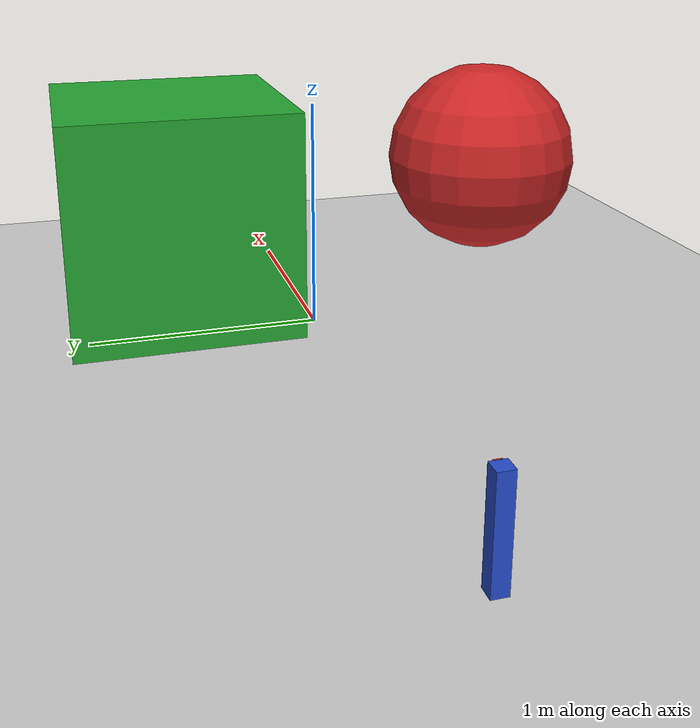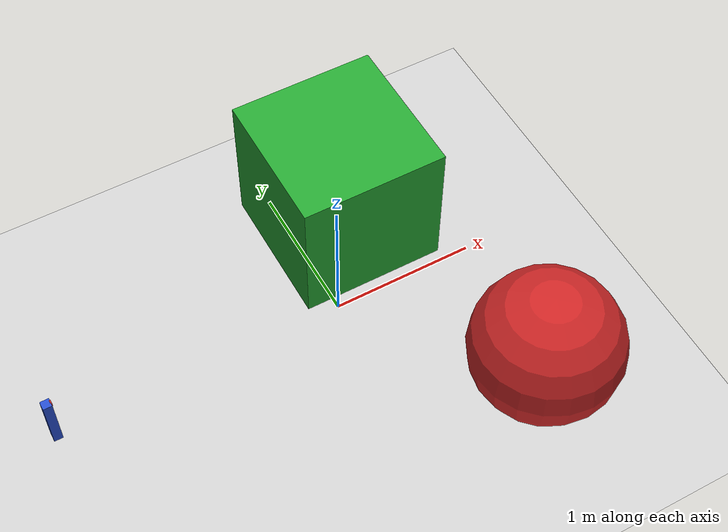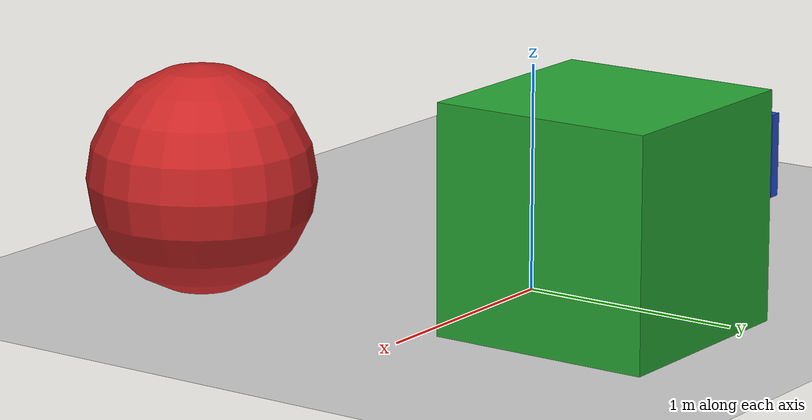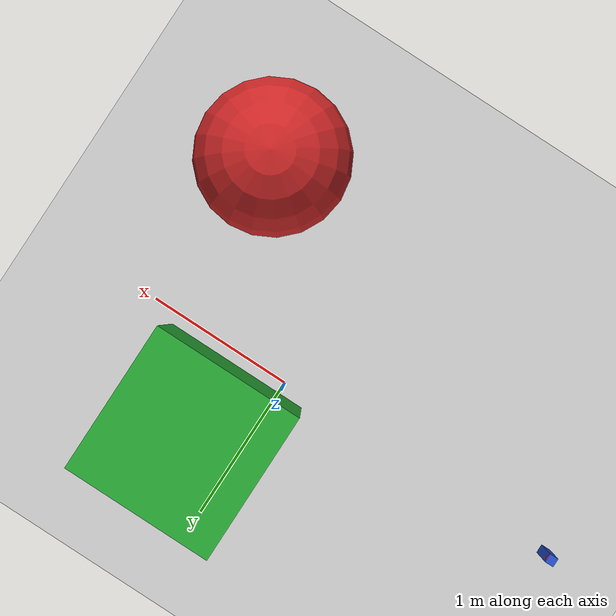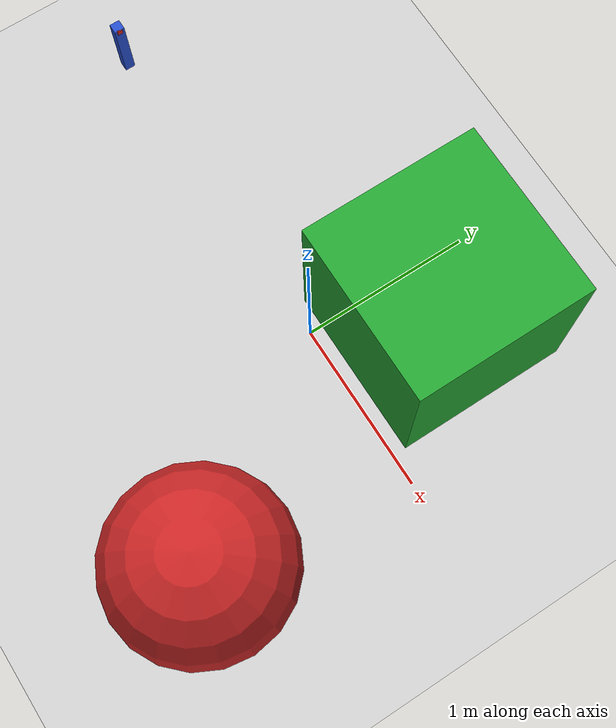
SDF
<sdf version="1.7">
 <world name="default">
  <light name="sun" type="directional">
   <pose>0 0 10 0 -0 0</pose>
   <diffuse>0.8 0.8 0.8 1</diffuse>
   <specular>0.2 0.2 0.2 1</specular>
   <attenuation>
    <range>1000</range>
    <constant>0.9</constant>
    <linear>0.01</linear>
    <quadratic>0.001</quadratic>
   </attenuation>
   <direction>-0.5 0.1 -0.9</direction>
   <spot><inner_angle>0</inner_angle><outer_angle>0</outer_angle><falloff>0</falloff></spot>
  </light>
  <model name="ground_plane">
   <static>1</static>
   <link name="link">
    <collision name="collision">
     <geometry><plane><normal>0 0 1</normal><size>100 100</size></plane></geometry>
     <surface>
      <contact><collide_bitmask>65535</collide_bitmask></contact>
      <friction><ode><mu>100</mu><mu2>50</mu2></ode></friction>
     </surface>
    </collision>
    <visual name="visual">
     <cast_shadows>0</cast_shadows>
     <geometry><plane><normal>0 0 1</normal><size>100 100</size></plane></geometry>
     <material>
      <script><uri>file://media/materials/scripts/gazebo.material</uri><name>Gazebo/Grey</name></script>
     </material>
    </visual>
   </link>
  </model>
  <gravity>0 0 -9.8</gravity>
  <magnetic_field>6e-06 2.3e-05 -4.2e-05</magnetic_field>
  <atmosphere type="adiabatic"/>
  <physics type="ode">
   <max_step_size>0.001</max_step_size>
   <real_time_factor>1</real_time_factor>
   <real_time_update_rate>1000</real_time_update_rate>
  </physics>
  <scene><ambient>0.4 0.4 0.4 1</ambient><background>0.7 0.7 0.7 1</background><shadows>1</shadows></scene>
  <audio><device>default</device></audio>
  <spherical_coordinates>
   <surface_model>EARTH_WGS84</surface_model>
   <latitude_deg>0</latitude_deg>
   <longitude_deg>0</longitude_deg>
   <elevation>0</elevation>
   <heading_deg>0</heading_deg>
  </spherical_coordinates>
  <model name="unit_sphere">
   <pose>0.828776 -1.15526 0.5 0 -0 0</pose>
   <link name="link">
    <inertial>
     <mass>1</mass>
     <inertia><ixx>0.1</ixx><ixy>0</ixy><ixz>0</ixz><iyy>0.1</iyy><iyz>0</iyz><izz>0.1</izz></inertia>
    </inertial>
    <collision name="collision"><geometry><sphere><radius>0.5</radius></sphere></geometry></collision>
    <visual name="visual">
     <geometry><sphere><radius>0.5</radius></sphere></geometry>
     <material>
      <script><name>Gazebo/Red</name><uri>file://media/materials/scripts/gazebo.material</uri></script>
     </material>
    </visual>
   </link>
  </model>
  <model name="unit_box">
   <pose>0.320552 0.577764 0.499995 -1e-05 -0 -0</pose>
   <link name="link">
    <inertial>
     <mass>1</mass>
     <inertia>
      <ixx>0.166667</ixx>
      <ixy>0</ixy>
      <ixz>0</ixz>
      <iyy>0.166667</iyy>
      <iyz>0</iyz>
      <izz>0.166667</izz>
     </inertia>
    </inertial>
    <collision name="collision"><geometry><box><size>1 1 1</size></box></geometry></collision>
    <visual name="visual">
     <geometry><box><size>1 1 1</size></box></geometry>
     <material>
      <script><name>Gazebo/Green</name><uri>file://media/materials/scripts/gazebo.material</uri></script>
     </material>
    </visual>
   </link>
  </model>
  <model name="camera_robot">
   <link name="base_link">
    <inertial>
     <pose>-2 0 0.2 0 -0 0</pose>
     <mass>0.5</mass>
     <inertia>
      <ixx>0.00181667</ixx>
      <ixy>0</ixy>
      <ixz>0</ixz>
      <iyy>0.00181667</iyy>
      <iyz>0</iyz>
      <izz>0.0003</izz>
     </inertia>
    </inertial>
    <collision name="base_link_fixed_joint_lump__body_collision">
     <pose>-2 0 0.2 0 -0 0</pose>
     <geometry><box><size>0.06 0.06 0.4</size></box></geometry>
    </collision>
    <collision name="base_link_fixed_joint_lump__camera_link_collision_1">
     <pose>-1.97 0 0.385 0 -0 0</pose>
     <geometry><box><size>0.01 0.03 0.03</size></box></geometry>
    </collision>
    <visual name="base_link_fixed_joint_lump__body_visual">
     <pose>-2 0 0.2 0 -0 0</pose>
     <geometry><box><size>0.06 0.06 0.4</size></box></geometry>
     <material>
      <script><name>Gazebo/blue</name><uri>file://media/materials/scripts/gazebo.material</uri></script>
     </material>
    </visual>
    <visual name="base_link_fixed_joint_lump__camera_link_visual_1">
     <pose>-1.97 0 0.385 0 -0 0</pose>
     <geometry><box><size>0.01 0.03 0.03</size></box></geometry>
     <material>
      <script><name>Gazebo/Red</name><uri>file://media/materials/scripts/gazebo.material</uri></script>
     </material>
    </visual>
    <sensor name="camera" type="camera">
     <visualize>1</visualize>
     <update_rate>10</update_rate>
     <camera>
      <horizontal_fov>1.089</horizontal_fov>
      <image><format>B8G8R8</format><width>640</width><height>480</height></image>
      <clip><near>0.05</near><far>1000</far></clip>
     </camera>
     <plugin name="camera_controller" filename="libgazebo_ros_camera.so">
      <frame_name>camera_link_optical</frame_name>
      <min_depth>0.1</min_depth>
      <max_depth>100.0</max_depth>
     </plugin>
     <pose>-1.97 0 0.385 0 -0 0</pose>
    </sensor>
   </link>
   <static>0</static>
   <plugin name="diff_drive" filename="libgazebo_ros_diff_drive.so">
    <left_joint>left_wheel_joint</left_joint>
    <right_joint>right_wheel_joint</right_joint>
    <wheel_separation>0.35</wheel_separation>
    <wheel_diameter>0.1</wheel_diameter>
    <max_wheel_torque>200</max_wheel_torque>
    <max_wheel_acceleration>10.0</max_wheel_acceleration>
    <odometry_frame>odom</odometry_frame>
    <robot_base_frame>base_link</robot_base_frame>
    <publish_odom>1</publish_odom>
    <publish_odom_tf>1</publish_odom_tf>
    <publish_wheel_tf>1</publish_wheel_tf>
   </plugin>
   <pose>-2.3e-05 0.003932 -5e-06 -3e-06 2e-06 0.001964</pose>
  </model>
 </world>
</sdf>
